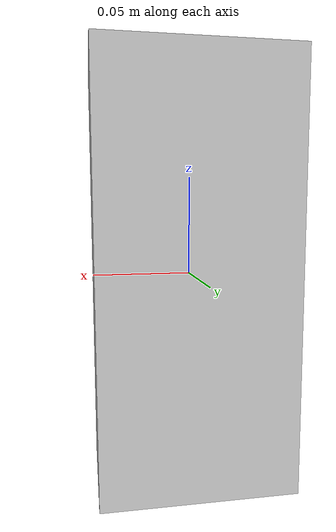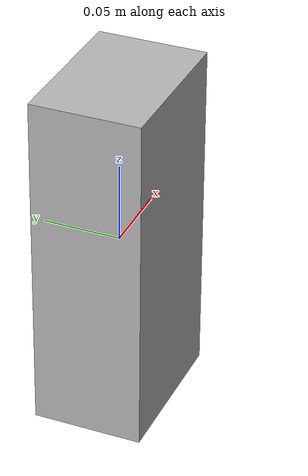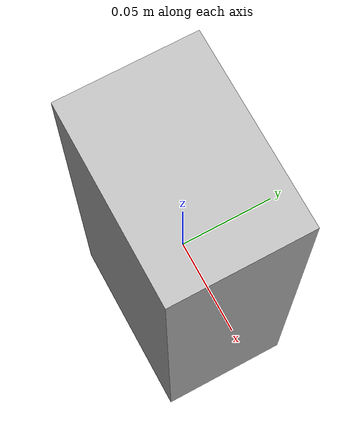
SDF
<?xml version='1.0'?>
<sdf version="1.4">
  <model name="box_with_tag">
    <pose>0 0 0. 0 0 0</pose>
    <static>false</static>
    <link name="link">
      <inertial>
        <mass>1.0</mass>
        <inertia> <!-- inertias are tricky to compute -->
          <!-- http://gazebosim.org/tutorials?tut=inertia&cat=build_robot -->
          <ixx>0.083</ixx>       <!-- for a box: ixx = 0.083 * mass * (y*y + z*z) -->
          <ixy>0.0</ixy>         <!-- for a box: ixy = 0 -->
          <ixz>0.0</ixz>         <!-- for a box: ixz = 0 -->
          <iyy>0.083</iyy>       <!-- for a box: iyy = 0.083 * mass * (x*x + z*z) -->
          <iyz>0.0</iyz>         <!-- for a box: iyz = 0 -->
          <izz>0.083</izz>       <!-- for a box: izz = 0.083 * mass * (x*x + y*y) -->
        </inertia>
      </inertial>
      <collision name="collision">
        <geometry>
          <box>
            <size>0.1 0.07 0.22</size>
          </box>
        </geometry>
      </collision>
      <visual name="visual">
        <geometry>
          <box>
            <size>0.1 0.07 0.22</size>
          </box>
        </geometry>
	<material>
          <script>
            <uri>model://box_with_tag/materials/scripts</uri>
            <uri>model://box_with_tag/materials/textures</uri>
            <name>Tag/Diffuse</name>
          </script>
        </material>
      </visual>
    </link>
  </model>
</sdf>
